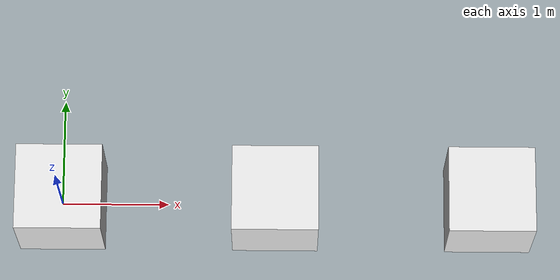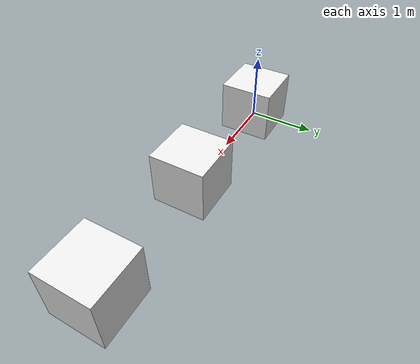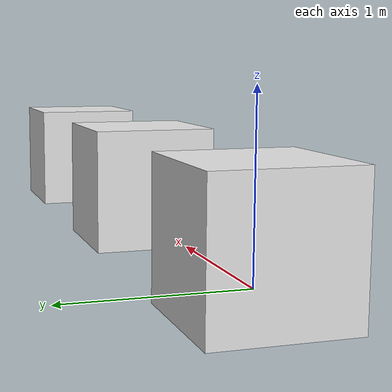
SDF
<sdf version='1.5'>
    <!-- Draw Circle -->
    <model name='ros_symbol'>
      <static>1</static>
      <link name='symbol'>
        <collision name='two_two'>
          <pose>0 0 0.25 0 0 0</pose>
          <geometry>
            <box>
              <size>0.8 0.8 0.8</size>
            </box>
          </geometry>
          <max_contacts>10</max_contacts>
          <surface>
            <bounce/>
            <friction>
              <ode/>
            </friction>
            <contact>
              <ode/>
            </contact>
          </surface>
        </collision>

        <visual name='two_two'>
          <pose>0 0 0.25 0 0 0</pose>
          <geometry>
            <box>
              <size>0.8 0.8 0.8</size>
            </box>
          </geometry>
          <material>
            <script>
              <uri>file://media/materials/scripts/gazebo.material</uri>
              <name>Gazebo/White</name>
            </script>
          </material>
        </visual>

        <collision name='three'>
          <pose>2 0 0.25 0 0 0</pose>
          <geometry>
            <box>
              <size>0.8 0.8 0.8</size>
            </box>
          </geometry>
          <max_contacts>10</max_contacts>
          <surface>
            <bounce/>
            <friction>
              <ode/>
            </friction>
            <contact>
              <ode/>
            </contact>
          </surface>
        </collision>

        <visual name='three'>
          <pose>2 0 0.25 0 0 0</pose>
          <geometry>
            <box>
              <size>0.8 0.8 0.8</size>
            </box>
          </geometry>
          <material>
            <script>
              <uri>file://media/materials/scripts/gazebo.material</uri>
              <name>Gazebo/White</name>
            </script>
          </material>
        </visual>

        <collision name='four'>
          <pose>4 0 0.25 0 0 0</pose>
          <geometry>
            <box>
              <size>0.8 0.8 0.8</size>
            </box>
          </geometry>
          <max_contacts>10</max_contacts>
          <surface>
            <bounce/>
            <friction>
              <ode/>
            </friction>
            <contact>
              <ode/>
            </contact>
          </surface>
        </collision>

        <visual name='four'>
          <pose>4 0 0.25 0 0 0</pose>
          <geometry>
            <box>
              <size>0.8 0.8 0.8</size>
            </box>
          </geometry>
          <material>
            <script>
              <uri>file://media/materials/scripts/gazebo.material</uri>
              <name>Gazebo/White</name>
            </script>
          </material>
        </visual>

	</link>

  </model>
</sdf>
